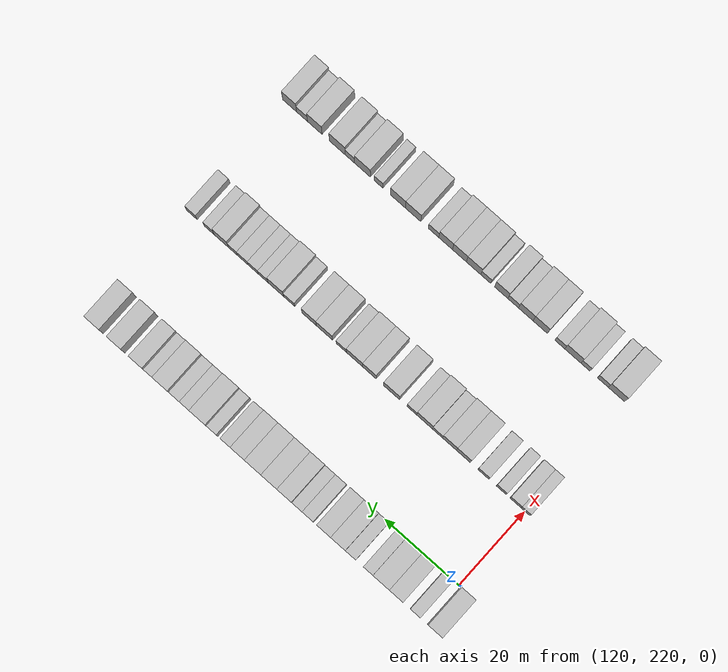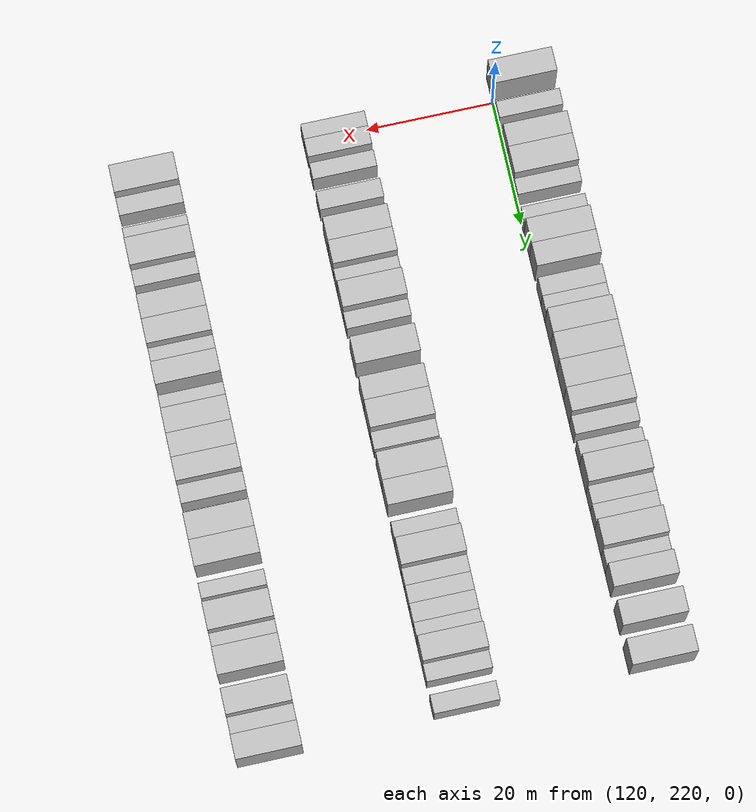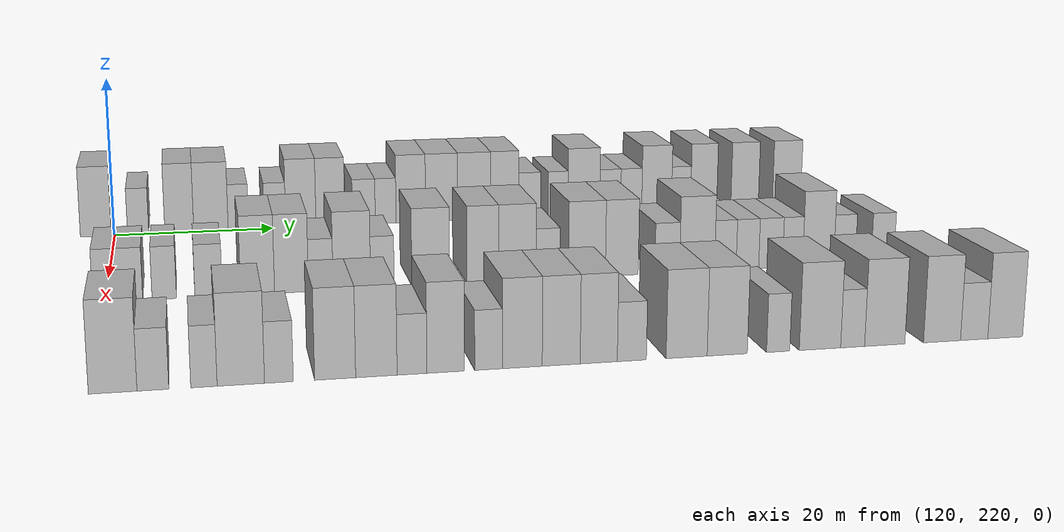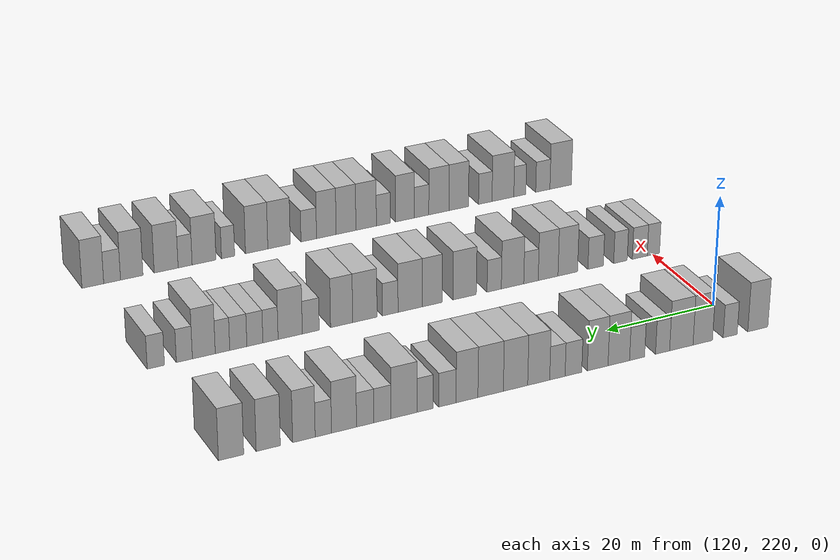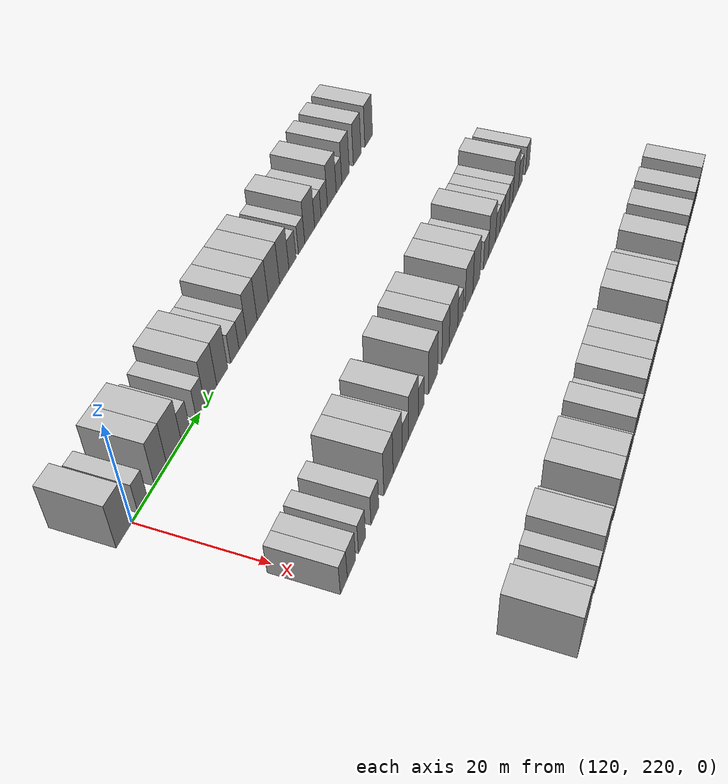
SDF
<sdf version="1.6">
 <world name="default">
  <model name="building_849">
   <static>1</static>
   <pose>115.0000 217.7060 0 0.000000 0.000000 0.000000</pose>
   <link name="link">
    <pose>0 0 4.50 0 0 0</pose>
    <collision name="collision"><geometry><box><size>10.0000 3.8228 9.0000</size></box></geometry></collision>
    <visual name="visual">
     <cast_shadows>0</cast_shadows>
     <geometry><box><size>10.0000 3.8228 9.0000</size></box></geometry>
     <material>
      <script>
       <uri>model://HANNAS_wall/materials/scripts</uri>
       <uri>model://HANNAS_wall/materials/textures</uri>
       <name>vrc/HANNAS_wall</name>
      </script>
     </material>
    </visual>
   </link>
  </model>
  <model name="building_850">
   <static>1</static>
   <pose>115.0000 222.9401 0 0.000000 0.000000 0.000000</pose>
   <link name="link">
    <pose>0 0 3.00 0 0 0</pose>
    <collision name="collision"><geometry><box><size>10.0000 2.6454 6.0000</size></box></geometry></collision>
    <visual name="visual">
     <cast_shadows>0</cast_shadows>
     <geometry><box><size>10.0000 2.6454 6.0000</size></box></geometry>
     <material>
      <script>
       <uri>model://HANNAS_wall/materials/scripts</uri>
       <uri>model://HANNAS_wall/materials/textures</uri>
       <name>vrc/HANNAS_wall</name>
      </script>
     </material>
    </visual>
   </link>
  </model>
  <model name="building_851">
   <static>1</static>
   <pose>115.0000 228.0801 0 0.000000 0.000000 0.000000</pose>
   <link name="link">
    <pose>0 0 4.50 0 0 0</pose>
    <collision name="collision"><geometry><box><size>10.0000 3.6346 9.0000</size></box></geometry></collision>
    <visual name="visual">
     <cast_shadows>0</cast_shadows>
     <geometry><box><size>10.0000 3.6346 9.0000</size></box></geometry>
     <material>
      <script>
       <uri>model://HANNAS_wall/materials/scripts</uri>
       <uri>model://HANNAS_wall/materials/textures</uri>
       <name>vrc/HANNAS_wall</name>
      </script>
     </material>
    </visual>
   </link>
  </model>
  <model name="building_852">
   <static>1</static>
   <pose>115.0000 232.0698 0 0.000000 0.000000 0.000000</pose>
   <link name="link">
    <pose>0 0 4.50 0 0 0</pose>
    <collision name="collision"><geometry><box><size>10.0000 4.3447 9.0000</size></box></geometry></collision>
    <visual name="visual">
     <cast_shadows>0</cast_shadows>
     <geometry><box><size>10.0000 4.3447 9.0000</size></box></geometry>
     <material>
      <script>
       <uri>model://HANNAS_wall/materials/scripts</uri>
       <uri>model://HANNAS_wall/materials/textures</uri>
       <name>vrc/HANNAS_wall</name>
      </script>
     </material>
    </visual>
   </link>
  </model>
  <model name="building_853">
   <static>1</static>
   <pose>115.0000 235.5335 0 0.000000 0.000000 0.000000</pose>
   <link name="link">
    <pose>0 0 3.00 0 0 0</pose>
    <collision name="collision"><geometry><box><size>10.0000 2.5827 6.0000</size></box></geometry></collision>
    <visual name="visual">
     <cast_shadows>0</cast_shadows>
     <geometry><box><size>10.0000 2.5827 6.0000</size></box></geometry>
     <material>
      <script>
       <uri>model://HANNAS_wall/materials/scripts</uri>
       <uri>model://HANNAS_wall/materials/textures</uri>
       <name>vrc/HANNAS_wall</name>
      </script>
     </material>
    </visual>
   </link>
  </model>
  <model name="building_854">
   <static>1</static>
   <pose>115.0000 240.2026 0 0.000000 0.000000 0.000000</pose>
   <link name="link">
    <pose>0 0 3.00 0 0 0</pose>
    <collision name="collision"><geometry><box><size>10.0000 2.7555 6.0000</size></box></geometry></collision>
    <visual name="visual">
     <cast_shadows>0</cast_shadows>
     <geometry><box><size>10.0000 2.7555 6.0000</size></box></geometry>
     <material>
      <script>
       <uri>model://HANNAS_wall/materials/scripts</uri>
       <uri>model://HANNAS_wall/materials/textures</uri>
       <name>vrc/HANNAS_wall</name>
      </script>
     </material>
    </visual>
   </link>
  </model>
  <model name="building_855">
   <static>1</static>
   <pose>115.0000 243.5331 0 0.000000 0.000000 0.000000</pose>
   <link name="link">
    <pose>0 0 4.50 0 0 0</pose>
    <collision name="collision"><geometry><box><size>10.0000 3.9055 9.0000</size></box></geometry></collision>
    <visual name="visual">
     <cast_shadows>0</cast_shadows>
     <geometry><box><size>10.0000 3.9055 9.0000</size></box></geometry>
     <material>
      <script>
       <uri>model://HANNAS_wall/materials/scripts</uri>
       <uri>model://HANNAS_wall/materials/textures</uri>
       <name>vrc/HANNAS_wall</name>
      </script>
     </material>
    </visual>
   </link>
  </model>
  <model name="building_856">
   <static>1</static>
   <pose>115.0000 247.3498 0 0.000000 0.000000 0.000000</pose>
   <link name="link">
    <pose>0 0 4.50 0 0 0</pose>
    <collision name="collision"><geometry><box><size>10.0000 3.7279 9.0000</size></box></geometry></collision>
    <visual name="visual">
     <cast_shadows>0</cast_shadows>
     <geometry><box><size>10.0000 3.7279 9.0000</size></box></geometry>
     <material>
      <script>
       <uri>model://HANNAS_wall/materials/scripts</uri>
       <uri>model://HANNAS_wall/materials/textures</uri>
       <name>vrc/HANNAS_wall</name>
      </script>
     </material>
    </visual>
   </link>
  </model>
  <model name="building_857">
   <static>1</static>
   <pose>115.0000 251.7013 0 0.000000 0.000000 0.000000</pose>
   <link name="link">
    <pose>0 0 3.00 0 0 0</pose>
    <collision name="collision"><geometry><box><size>10.0000 2.9753 6.0000</size></box></geometry></collision>
    <visual name="visual">
     <cast_shadows>0</cast_shadows>
     <geometry><box><size>10.0000 2.9753 6.0000</size></box></geometry>
     <material>
      <script>
       <uri>model://HANNAS_wall/materials/scripts</uri>
       <uri>model://HANNAS_wall/materials/textures</uri>
       <name>vrc/HANNAS_wall</name>
      </script>
     </material>
    </visual>
   </link>
  </model>
  <model name="building_858">
   <static>1</static>
   <pose>115.0000 254.5559 0 0.000000 0.000000 0.000000</pose>
   <link name="link">
    <pose>0 0 3.00 0 0 0</pose>
    <collision name="collision"><geometry><box><size>10.0000 2.7339 6.0000</size></box></geometry></collision>
    <visual name="visual">
     <cast_shadows>0</cast_shadows>
     <geometry><box><size>10.0000 2.7339 6.0000</size></box></geometry>
     <material>
      <script>
       <uri>model://HANNAS_wall/materials/scripts</uri>
       <uri>model://HANNAS_wall/materials/textures</uri>
       <name>vrc/HANNAS_wall</name>
      </script>
     </material>
    </visual>
   </link>
  </model>
  <model name="building_859">
   <static>1</static>
   <pose>115.0000 257.8661 0 0.000000 0.000000 0.000000</pose>
   <link name="link">
    <pose>0 0 4.50 0 0 0</pose>
    <collision name="collision"><geometry><box><size>10.0000 3.8864 9.0000</size></box></geometry></collision>
    <visual name="visual">
     <cast_shadows>0</cast_shadows>
     <geometry><box><size>10.0000 3.8864 9.0000</size></box></geometry>
     <material>
      <script>
       <uri>model://HANNAS_wall/materials/scripts</uri>
       <uri>model://HANNAS_wall/materials/textures</uri>
       <name>vrc/HANNAS_wall</name>
      </script>
     </material>
    </visual>
   </link>
  </model>
  <model name="building_860">
   <static>1</static>
   <pose>115.0000 261.9415 0 0.000000 0.000000 0.000000</pose>
   <link name="link">
    <pose>0 0 4.50 0 0 0</pose>
    <collision name="collision"><geometry><box><size>10.0000 4.2643 9.0000</size></box></geometry></collision>
    <visual name="visual">
     <cast_shadows>0</cast_shadows>
     <geometry><box><size>10.0000 4.2643 9.0000</size></box></geometry>
     <material>
      <script>
       <uri>model://HANNAS_wall/materials/scripts</uri>
       <uri>model://HANNAS_wall/materials/textures</uri>
       <name>vrc/HANNAS_wall</name>
      </script>
     </material>
    </visual>
   </link>
  </model>
  <model name="building_861">
   <static>1</static>
   <pose>115.0000 266.2828 0 0.000000 0.000000 0.000000</pose>
   <link name="link">
    <pose>0 0 4.50 0 0 0</pose>
    <collision name="collision"><geometry><box><size>10.0000 4.4184 9.0000</size></box></geometry></collision>
    <visual name="visual">
     <cast_shadows>0</cast_shadows>
     <geometry><box><size>10.0000 4.4184 9.0000</size></box></geometry>
     <material>
      <script>
       <uri>model://HANNAS_wall/materials/scripts</uri>
       <uri>model://HANNAS_wall/materials/textures</uri>
       <name>vrc/HANNAS_wall</name>
      </script>
     </material>
    </visual>
   </link>
  </model>
  <model name="building_862">
   <static>1</static>
   <pose>115.0000 270.3829 0 0.000000 0.000000 0.000000</pose>
   <link name="link">
    <pose>0 0 4.50 0 0 0</pose>
    <collision name="collision"><geometry><box><size>10.0000 3.7817 9.0000</size></box></geometry></collision>
    <visual name="visual">
     <cast_shadows>0</cast_shadows>
     <geometry><box><size>10.0000 3.7817 9.0000</size></box></geometry>
     <material>
      <script>
       <uri>model://HANNAS_wall/materials/scripts</uri>
       <uri>model://HANNAS_wall/materials/textures</uri>
       <name>vrc/HANNAS_wall</name>
      </script>
     </material>
    </visual>
   </link>
  </model>
  <model name="building_863">
   <static>1</static>
   <pose>115.0000 273.7485 0 0.000000 0.000000 0.000000</pose>
   <link name="link">
    <pose>0 0 3.00 0 0 0</pose>
    <collision name="collision"><geometry><box><size>10.0000 2.9495 6.0000</size></box></geometry></collision>
    <visual name="visual">
     <cast_shadows>0</cast_shadows>
     <geometry><box><size>10.0000 2.9495 6.0000</size></box></geometry>
     <material>
      <script>
       <uri>model://HANNAS_wall/materials/scripts</uri>
       <uri>model://HANNAS_wall/materials/textures</uri>
       <name>vrc/HANNAS_wall</name>
      </script>
     </material>
    </visual>
   </link>
  </model>
  <model name="building_864">
   <static>1</static>
   <pose>115.0000 277.5841 0 0.000000 0.000000 0.000000</pose>
   <link name="link">
    <pose>0 0 3.00 0 0 0</pose>
    <collision name="collision"><geometry><box><size>10.0000 2.7217 6.0000</size></box></geometry></collision>
    <visual name="visual">
     <cast_shadows>0</cast_shadows>
     <geometry><box><size>10.0000 2.7217 6.0000</size></box></geometry>
     <material>
      <script>
       <uri>model://HANNAS_wall/materials/scripts</uri>
       <uri>model://HANNAS_wall/materials/textures</uri>
       <name>vrc/HANNAS_wall</name>
      </script>
     </material>
    </visual>
   </link>
  </model>
  <model name="building_865">
   <static>1</static>
   <pose>115.0000 281.1212 0 0.000000 0.000000 0.000000</pose>
   <link name="link">
    <pose>0 0 4.50 0 0 0</pose>
    <collision name="collision"><geometry><box><size>10.0000 4.3524 9.0000</size></box></geometry></collision>
    <visual name="visual">
     <cast_shadows>0</cast_shadows>
     <geometry><box><size>10.0000 4.3524 9.0000</size></box></geometry>
     <material>
      <script>
       <uri>model://HANNAS_wall/materials/scripts</uri>
       <uri>model://HANNAS_wall/materials/textures</uri>
       <name>vrc/HANNAS_wall</name>
      </script>
     </material>
    </visual>
   </link>
  </model>
  <model name="building_866">
   <static>1</static>
   <pose>115.0000 284.7415 0 0.000000 0.000000 0.000000</pose>
   <link name="link">
    <pose>0 0 3.00 0 0 0</pose>
    <collision name="collision"><geometry><box><size>10.0000 2.8881 6.0000</size></box></geometry></collision>
    <visual name="visual">
     <cast_shadows>0</cast_shadows>
     <geometry><box><size>10.0000 2.8881 6.0000</size></box></geometry>
     <material>
      <script>
       <uri>model://HANNAS_wall/materials/scripts</uri>
       <uri>model://HANNAS_wall/materials/textures</uri>
       <name>vrc/HANNAS_wall</name>
      </script>
     </material>
    </visual>
   </link>
  </model>
  <model name="building_867">
   <static>1</static>
   <pose>115.0000 287.6376 0 0.000000 0.000000 0.000000</pose>
   <link name="link">
    <pose>0 0 3.00 0 0 0</pose>
    <collision name="collision"><geometry><box><size>10.0000 2.9042 6.0000</size></box></geometry></collision>
    <visual name="visual">
     <cast_shadows>0</cast_shadows>
     <geometry><box><size>10.0000 2.9042 6.0000</size></box></geometry>
     <material>
      <script>
       <uri>model://HANNAS_wall/materials/scripts</uri>
       <uri>model://HANNAS_wall/materials/textures</uri>
       <name>vrc/HANNAS_wall</name>
      </script>
     </material>
    </visual>
   </link>
  </model>
  <model name="building_868">
   <static>1</static>
   <pose>115.0000 291.1579 0 0.000000 0.000000 0.000000</pose>
   <link name="link">
    <pose>0 0 4.50 0 0 0</pose>
    <collision name="collision"><geometry><box><size>10.0000 4.1363 9.0000</size></box></geometry></collision>
    <visual name="visual">
     <cast_shadows>0</cast_shadows>
     <geometry><box><size>10.0000 4.1363 9.0000</size></box></geometry>
     <material>
      <script>
       <uri>model://HANNAS_wall/materials/scripts</uri>
       <uri>model://HANNAS_wall/materials/textures</uri>
       <name>vrc/HANNAS_wall</name>
      </script>
     </material>
    </visual>
   </link>
  </model>
  <model name="building_869">
   <static>1</static>
   <pose>115.0000 294.5676 0 0.000000 0.000000 0.000000</pose>
   <link name="link">
    <pose>0 0 3.00 0 0 0</pose>
    <collision name="collision"><geometry><box><size>10.0000 2.6831 6.0000</size></box></geometry></collision>
    <visual name="visual">
     <cast_shadows>0</cast_shadows>
     <geometry><box><size>10.0000 2.6831 6.0000</size></box></geometry>
     <material>
      <script>
       <uri>model://HANNAS_wall/materials/scripts</uri>
       <uri>model://HANNAS_wall/materials/textures</uri>
       <name>vrc/HANNAS_wall</name>
      </script>
     </material>
    </visual>
   </link>
  </model>
  <model name="building_870">
   <static>1</static>
   <pose>115.0000 297.7502 0 0.000000 0.000000 0.000000</pose>
   <link name="link">
    <pose>0 0 4.50 0 0 0</pose>
    <collision name="collision"><geometry><box><size>10.0000 3.6821 9.0000</size></box></geometry></collision>
    <visual name="visual">
     <cast_shadows>0</cast_shadows>
     <geometry><box><size>10.0000 3.6821 9.0000</size></box></geometry>
     <material>
      <script>
       <uri>model://HANNAS_wall/materials/scripts</uri>
       <uri>model://HANNAS_wall/materials/textures</uri>
       <name>vrc/HANNAS_wall</name>
      </script>
     </material>
    </visual>
   </link>
  </model>
  <model name="building_871">
   <static>1</static>
   <pose>115.0000 303.5435 0 0.000000 0.000000 0.000000</pose>
   <link name="link">
    <pose>0 0 4.50 0 0 0</pose>
    <collision name="collision"><geometry><box><size>10.0000 3.9046 9.0000</size></box></geometry></collision>
    <visual name="visual">
     <cast_shadows>0</cast_shadows>
     <geometry><box><size>10.0000 3.9046 9.0000</size></box></geometry>
     <material>
      <script>
       <uri>model://HANNAS_wall/materials/scripts</uri>
       <uri>model://HANNAS_wall/materials/textures</uri>
       <name>vrc/HANNAS_wall</name>
      </script>
     </material>
    </visual>
   </link>
  </model>
  <model name="building_872">
   <static>1</static>
   <pose>115.0000 309.5176 0 0.000000 0.000000 0.000000</pose>
   <link name="link">
    <pose>0 0 4.50 0 0 0</pose>
    <collision name="collision"><geometry><box><size>10.0000 4.0435 9.0000</size></box></geometry></collision>
    <visual name="visual">
     <cast_shadows>0</cast_shadows>
     <geometry><box><size>10.0000 4.0435 9.0000</size></box></geometry>
     <material>
      <script>
       <uri>model://HANNAS_wall/materials/scripts</uri>
       <uri>model://HANNAS_wall/materials/textures</uri>
       <name>vrc/HANNAS_wall</name>
      </script>
     </material>
    </visual>
   </link>
  </model>
  <model name="building_1076">
   <static>1</static>
   <pose>145.0000 219.8713 0 0.000000 0.000000 0.000000</pose>
   <link name="link">
    <pose>0 0 3.00 0 0 0</pose>
    <collision name="collision"><geometry><box><size>10.0000 2.4144 6.0000</size></box></geometry></collision>
    <visual name="visual">
     <cast_shadows>0</cast_shadows>
     <geometry><box><size>10.0000 2.4144 6.0000</size></box></geometry>
     <material>
      <script>
       <uri>model://HANNAS_wall/materials/scripts</uri>
       <uri>model://HANNAS_wall/materials/textures</uri>
       <name>vrc/HANNAS_wall</name>
      </script>
     </material>
    </visual>
   </link>
  </model>
  <model name="building_1077">
   <static>1</static>
   <pose>145.0000 222.5494 0 0.000000 0.000000 0.000000</pose>
   <link name="link">
    <pose>0 0 3.00 0 0 0</pose>
    <collision name="collision"><geometry><box><size>10.0000 2.9419 6.0000</size></box></geometry></collision>
    <visual name="visual">
     <cast_shadows>0</cast_shadows>
     <geometry><box><size>10.0000 2.9419 6.0000</size></box></geometry>
     <material>
      <script>
       <uri>model://HANNAS_wall/materials/scripts</uri>
       <uri>model://HANNAS_wall/materials/textures</uri>
       <name>vrc/HANNAS_wall</name>
      </script>
     </material>
    </visual>
   </link>
  </model>
  <model name="building_1078">
   <static>1</static>
   <pose>145.0000 226.3404 0 0.000000 0.000000 0.000000</pose>
   <link name="link">
    <pose>0 0 3.00 0 0 0</pose>
    <collision name="collision"><geometry><box><size>10.0000 2.6401 6.0000</size></box></geometry></collision>
    <visual name="visual">
     <cast_shadows>0</cast_shadows>
     <geometry><box><size>10.0000 2.6401 6.0000</size></box></geometry>
     <material>
      <script>
       <uri>model://HANNAS_wall/materials/scripts</uri>
       <uri>model://HANNAS_wall/materials/textures</uri>
       <name>vrc/HANNAS_wall</name>
      </script>
     </material>
    </visual>
   </link>
  </model>
  <model name="building_1079">
   <static>1</static>
   <pose>145.0000 231.1580 0 0.000000 0.000000 0.000000</pose>
   <link name="link">
    <pose>0 0 3.00 0 0 0</pose>
    <collision name="collision"><geometry><box><size>10.0000 2.9951 6.0000</size></box></geometry></collision>
    <visual name="visual">
     <cast_shadows>0</cast_shadows>
     <geometry><box><size>10.0000 2.9951 6.0000</size></box></geometry>
     <material>
      <script>
       <uri>model://HANNAS_wall/materials/scripts</uri>
       <uri>model://HANNAS_wall/materials/textures</uri>
       <name>vrc/HANNAS_wall</name>
      </script>
     </material>
    </visual>
   </link>
  </model>
  <model name="building_1080">
   <static>1</static>
   <pose>145.0000 236.5283 0 0.000000 0.000000 0.000000</pose>
   <link name="link">
    <pose>0 0 4.50 0 0 0</pose>
    <collision name="collision"><geometry><box><size>10.0000 3.7454 9.0000</size></box></geometry></collision>
    <visual name="visual">
     <cast_shadows>0</cast_shadows>
     <geometry><box><size>10.0000 3.7454 9.0000</size></box></geometry>
     <material>
      <script>
       <uri>model://HANNAS_wall/materials/scripts</uri>
       <uri>model://HANNAS_wall/materials/textures</uri>
       <name>vrc/HANNAS_wall</name>
      </script>
     </material>
    </visual>
   </link>
  </model>
  <model name="building_1081">
   <static>1</static>
   <pose>145.0000 240.2845 0 0.000000 0.000000 0.000000</pose>
   <link name="link">
    <pose>0 0 4.50 0 0 0</pose>
    <collision name="collision"><geometry><box><size>10.0000 3.7670 9.0000</size></box></geometry></collision>
    <visual name="visual">
     <cast_shadows>0</cast_shadows>
     <geometry><box><size>10.0000 3.7670 9.0000</size></box></geometry>
     <material>
      <script>
       <uri>model://HANNAS_wall/materials/scripts</uri>
       <uri>model://HANNAS_wall/materials/textures</uri>
       <name>vrc/HANNAS_wall</name>
      </script>
     </material>
    </visual>
   </link>
  </model>
  <model name="building_1082">
   <static>1</static>
   <pose>145.0000 243.5395 0 0.000000 0.000000 0.000000</pose>
   <link name="link">
    <pose>0 0 3.00 0 0 0</pose>
    <collision name="collision"><geometry><box><size>10.0000 2.7430 6.0000</size></box></geometry></collision>
    <visual name="visual">
     <cast_shadows>0</cast_shadows>
     <geometry><box><size>10.0000 2.7430 6.0000</size></box></geometry>
     <material>
      <script>
       <uri>model://HANNAS_wall/materials/scripts</uri>
       <uri>model://HANNAS_wall/materials/textures</uri>
       <name>vrc/HANNAS_wall</name>
      </script>
     </material>
    </visual>
   </link>
  </model>
  <model name="building_1083">
   <static>1</static>
   <pose>145.0000 247.0206 0 0.000000 0.000000 0.000000</pose>
   <link name="link">
    <pose>0 0 4.50 0 0 0</pose>
    <collision name="collision"><geometry><box><size>10.0000 4.2194 9.0000</size></box></geometry></collision>
    <visual name="visual">
     <cast_shadows>0</cast_shadows>
     <geometry><box><size>10.0000 4.2194 9.0000</size></box></geometry>
     <material>
      <script>
       <uri>model://HANNAS_wall/materials/scripts</uri>
       <uri>model://HANNAS_wall/materials/textures</uri>
       <name>vrc/HANNAS_wall</name>
      </script>
     </material>
    </visual>
   </link>
  </model>
  <model name="building_1084">
   <static>1</static>
   <pose>145.0000 250.4663 0 0.000000 0.000000 0.000000</pose>
   <link name="link">
    <pose>0 0 3.00 0 0 0</pose>
    <collision name="collision"><geometry><box><size>10.0000 2.6719 6.0000</size></box></geometry></collision>
    <visual name="visual">
     <cast_shadows>0</cast_shadows>
     <geometry><box><size>10.0000 2.6719 6.0000</size></box></geometry>
     <material>
      <script>
       <uri>model://HANNAS_wall/materials/scripts</uri>
       <uri>model://HANNAS_wall/materials/textures</uri>
       <name>vrc/HANNAS_wall</name>
      </script>
     </material>
    </visual>
   </link>
  </model>
  <model name="building_1085">
   <static>1</static>
   <pose>145.0000 255.9695 0 0.000000 0.000000 0.000000</pose>
   <link name="link">
    <pose>0 0 4.50 0 0 0</pose>
    <collision name="collision"><geometry><box><size>10.0000 4.3346 9.0000</size></box></geometry></collision>
    <visual name="visual">
     <cast_shadows>0</cast_shadows>
     <geometry><box><size>10.0000 4.3346 9.0000</size></box></geometry>
     <material>
      <script>
       <uri>model://HANNAS_wall/materials/scripts</uri>
       <uri>model://HANNAS_wall/materials/textures</uri>
       <name>vrc/HANNAS_wall</name>
      </script>
     </material>
    </visual>
   </link>
  </model>
  <model name="building_1086">
   <static>1</static>
   <pose>145.0000 261.9643 0 0.000000 0.000000 0.000000</pose>
   <link name="link">
    <pose>0 0 4.50 0 0 0</pose>
    <collision name="collision"><geometry><box><size>10.0000 3.6550 9.0000</size></box></geometry></collision>
    <visual name="visual">
     <cast_shadows>0</cast_shadows>
     <geometry><box><size>10.0000 3.6550 9.0000</size></box></geometry>
     <material>
      <script>
       <uri>model://HANNAS_wall/materials/scripts</uri>
       <uri>model://HANNAS_wall/materials/textures</uri>
       <name>vrc/HANNAS_wall</name>
      </script>
     </material>
    </visual>
   </link>
  </model>
  <model name="building_1087">
   <static>1</static>
   <pose>145.0000 265.9837 0 0.000000 0.000000 0.000000</pose>
   <link name="link">
    <pose>0 0 4.50 0 0 0</pose>
    <collision name="collision"><geometry><box><size>10.0000 4.3838 9.0000</size></box></geometry></collision>
    <visual name="visual">
     <cast_shadows>0</cast_shadows>
     <geometry><box><size>10.0000 4.3838 9.0000</size></box></geometry>
     <material>
      <script>
       <uri>model://HANNAS_wall/materials/scripts</uri>
       <uri>model://HANNAS_wall/materials/textures</uri>
       <name>vrc/HANNAS_wall</name>
      </script>
     </material>
    </visual>
   </link>
  </model>
  <model name="building_1088">
   <static>1</static>
   <pose>145.0000 269.5770 0 0.000000 0.000000 0.000000</pose>
   <link name="link">
    <pose>0 0 3.00 0 0 0</pose>
    <collision name="collision"><geometry><box><size>10.0000 2.8028 6.0000</size></box></geometry></collision>
    <visual name="visual">
     <cast_shadows>0</cast_shadows>
     <geometry><box><size>10.0000 2.8028 6.0000</size></box></geometry>
     <material>
      <script>
       <uri>model://HANNAS_wall/materials/scripts</uri>
       <uri>model://HANNAS_wall/materials/textures</uri>
       <name>vrc/HANNAS_wall</name>
      </script>
     </material>
    </visual>
   </link>
  </model>
  <model name="building_1089">
   <static>1</static>
   <pose>145.0000 274.1608 0 0.000000 0.000000 0.000000</pose>
   <link name="link">
    <pose>0 0 4.50 0 0 0</pose>
    <collision name="collision"><geometry><box><size>10.0000 4.3649 9.0000</size></box></geometry></collision>
    <visual name="visual">
     <cast_shadows>0</cast_shadows>
     <geometry><box><size>10.0000 4.3649 9.0000</size></box></geometry>
     <material>
      <script>
       <uri>model://HANNAS_wall/materials/scripts</uri>
       <uri>model://HANNAS_wall/materials/textures</uri>
       <name>vrc/HANNAS_wall</name>
      </script>
     </material>
    </visual>
   </link>
  </model>
  <model name="building_1090">
   <static>1</static>
   <pose>145.0000 278.3049 0 0.000000 0.000000 0.000000</pose>
   <link name="link">
    <pose>0 0 4.50 0 0 0</pose>
    <collision name="collision"><geometry><box><size>10.0000 3.9231 9.0000</size></box></geometry></collision>
    <visual name="visual">
     <cast_shadows>0</cast_shadows>
     <geometry><box><size>10.0000 3.9231 9.0000</size></box></geometry>
     <material>
      <script>
       <uri>model://HANNAS_wall/materials/scripts</uri>
       <uri>model://HANNAS_wall/materials/textures</uri>
       <name>vrc/HANNAS_wall</name>
      </script>
     </material>
    </visual>
   </link>
  </model>
  <model name="building_1091">
   <static>1</static>
   <pose>145.0000 283.7570 0 0.000000 0.000000 0.000000</pose>
   <link name="link">
    <pose>0 0 3.00 0 0 0</pose>
    <collision name="collision"><geometry><box><size>10.0000 2.9811 6.0000</size></box></geometry></collision>
    <visual name="visual">
     <cast_shadows>0</cast_shadows>
     <geometry><box><size>10.0000 2.9811 6.0000</size></box></geometry>
     <material>
      <script>
       <uri>model://HANNAS_wall/materials/scripts</uri>
       <uri>model://HANNAS_wall/materials/textures</uri>
       <name>vrc/HANNAS_wall</name>
      </script>
     </material>
    </visual>
   </link>
  </model>
  <model name="building_1092">
   <static>1</static>
   <pose>145.0000 287.3699 0 0.000000 0.000000 0.000000</pose>
   <link name="link">
    <pose>0 0 4.50 0 0 0</pose>
    <collision name="collision"><geometry><box><size>10.0000 4.2446 9.0000</size></box></geometry></collision>
    <visual name="visual">
     <cast_shadows>0</cast_shadows>
     <geometry><box><size>10.0000 4.2446 9.0000</size></box></geometry>
     <material>
      <script>
       <uri>model://HANNAS_wall/materials/scripts</uri>
       <uri>model://HANNAS_wall/materials/textures</uri>
       <name>vrc/HANNAS_wall</name>
      </script>
     </material>
    </visual>
   </link>
  </model>
  <model name="building_1093">
   <static>1</static>
   <pose>145.0000 290.8124 0 0.000000 0.000000 0.000000</pose>
   <link name="link">
    <pose>0 0 3.00 0 0 0</pose>
    <collision name="collision"><geometry><box><size>10.0000 2.6406 6.0000</size></box></geometry></collision>
    <visual name="visual">
     <cast_shadows>0</cast_shadows>
     <geometry><box><size>10.0000 2.6406 6.0000</size></box></geometry>
     <material>
      <script>
       <uri>model://HANNAS_wall/materials/scripts</uri>
       <uri>model://HANNAS_wall/materials/textures</uri>
       <name>vrc/HANNAS_wall</name>
      </script>
     </material>
    </visual>
   </link>
  </model>
  <model name="building_1094">
   <static>1</static>
   <pose>145.0000 293.5185 0 0.000000 0.000000 0.000000</pose>
   <link name="link">
    <pose>0 0 3.00 0 0 0</pose>
    <collision name="collision"><geometry><box><size>10.0000 2.7715 6.0000</size></box></geometry></collision>
    <visual name="visual">
     <cast_shadows>0</cast_shadows>
     <geometry><box><size>10.0000 2.7715 6.0000</size></box></geometry>
     <material>
      <script>
       <uri>model://HANNAS_wall/materials/scripts</uri>
       <uri>model://HANNAS_wall/materials/textures</uri>
       <name>vrc/HANNAS_wall</name>
      </script>
     </material>
    </visual>
   </link>
  </model>
  <model name="building_1095">
   <static>1</static>
   <pose>145.0000 296.3792 0 0.000000 0.000000 0.000000</pose>
   <link name="link">
    <pose>0 0 3.00 0 0 0</pose>
    <collision name="collision"><geometry><box><size>10.0000 2.9499 6.0000</size></box></geometry></collision>
    <visual name="visual">
     <cast_shadows>0</cast_shadows>
     <geometry><box><size>10.0000 2.9499 6.0000</size></box></geometry>
     <material>
      <script>
       <uri>model://HANNAS_wall/materials/scripts</uri>
       <uri>model://HANNAS_wall/materials/textures</uri>
       <name>vrc/HANNAS_wall</name>
      </script>
     </material>
    </visual>
   </link>
  </model>
  <model name="building_1096">
   <static>1</static>
   <pose>145.0000 299.0949 0 0.000000 0.000000 0.000000</pose>
   <link name="link">
    <pose>0 0 3.00 0 0 0</pose>
    <collision name="collision"><geometry><box><size>10.0000 2.4816 6.0000</size></box></geometry></collision>
    <visual name="visual">
     <cast_shadows>0</cast_shadows>
     <geometry><box><size>10.0000 2.4816 6.0000</size></box></geometry>
     <material>
      <script>
       <uri>model://HANNAS_wall/materials/scripts</uri>
       <uri>model://HANNAS_wall/materials/textures</uri>
       <name>vrc/HANNAS_wall</name>
      </script>
     </material>
    </visual>
   </link>
  </model>
  <model name="building_1097">
   <static>1</static>
   <pose>145.0000 302.2819 0 0.000000 0.000000 0.000000</pose>
   <link name="link">
    <pose>0 0 4.50 0 0 0</pose>
    <collision name="collision"><geometry><box><size>10.0000 3.8923 9.0000</size></box></geometry></collision>
    <visual name="visual">
     <cast_shadows>0</cast_shadows>
     <geometry><box><size>10.0000 3.8923 9.0000</size></box></geometry>
     <material>
      <script>
       <uri>model://HANNAS_wall/materials/scripts</uri>
       <uri>model://HANNAS_wall/materials/textures</uri>
       <name>vrc/HANNAS_wall</name>
      </script>
     </material>
    </visual>
   </link>
  </model>
  <model name="building_1098">
   <static>1</static>
   <pose>145.0000 305.5863 0 0.000000 0.000000 0.000000</pose>
   <link name="link">
    <pose>0 0 3.00 0 0 0</pose>
    <collision name="collision"><geometry><box><size>10.0000 2.7165 6.0000</size></box></geometry></collision>
    <visual name="visual">
     <cast_shadows>0</cast_shadows>
     <geometry><box><size>10.0000 2.7165 6.0000</size></box></geometry>
     <material>
      <script>
       <uri>model://HANNAS_wall/materials/scripts</uri>
       <uri>model://HANNAS_wall/materials/textures</uri>
       <name>vrc/HANNAS_wall</name>
      </script>
     </material>
    </visual>
   </link>
  </model>
  <model name="building_1099">
   <static>1</static>
   <pose>145.0000 310.3919 0 0.000000 0.000000 0.000000</pose>
   <link name="link">
    <pose>0 0 3.00 0 0 0</pose>
    <collision name="collision"><geometry><box><size>10.0000 2.8947 6.0000</size></box></geometry></collision>
    <visual name="visual">
     <cast_shadows>0</cast_shadows>
     <geometry><box><size>10.0000 2.8947 6.0000</size></box></geometry>
     <material>
      <script>
       <uri>model://HANNAS_wall/materials/scripts</uri>
       <uri>model://HANNAS_wall/materials/textures</uri>
       <name>vrc/HANNAS_wall</name>
      </script>
     </material>
    </visual>
   </link>
  </model>
  <model name="building_1303">
   <static>1</static>
   <pose>175.0000 221.8098 0 0.000000 0.000000 0.000000</pose>
   <link name="link">
    <pose>0 0 4.50 0 0 0</pose>
    <collision name="collision"><geometry><box><size>10.0000 4.3854 9.0000</size></box></geometry></collision>
    <visual name="visual">
     <cast_shadows>0</cast_shadows>
     <geometry><box><size>10.0000 4.3854 9.0000</size></box></geometry>
     <material>
      <script>
       <uri>model://HANNAS_wall/materials/scripts</uri>
       <uri>model://HANNAS_wall/materials/textures</uri>
       <name>vrc/HANNAS_wall</name>
      </script>
     </material>
    </visual>
   </link>
  </model>
  <model name="building_1304">
   <static>1</static>
   <pose>175.0000 225.4496 0 0.000000 0.000000 0.000000</pose>
   <link name="link">
    <pose>0 0 3.00 0 0 0</pose>
    <collision name="collision"><geometry><box><size>10.0000 2.8942 6.0000</size></box></geometry></collision>
    <visual name="visual">
     <cast_shadows>0</cast_shadows>
     <geometry><box><size>10.0000 2.8942 6.0000</size></box></geometry>
     <material>
      <script>
       <uri>model://HANNAS_wall/materials/scripts</uri>
       <uri>model://HANNAS_wall/materials/textures</uri>
       <name>vrc/HANNAS_wall</name>
      </script>
     </material>
    </visual>
   </link>
  </model>
  <model name="building_1305">
   <static>1</static>
   <pose>175.0000 230.1076 0 0.000000 0.000000 0.000000</pose>
   <link name="link">
    <pose>0 0 3.00 0 0 0</pose>
    <collision name="collision"><geometry><box><size>10.0000 2.4218 6.0000</size></box></geometry></collision>
    <visual name="visual">
     <cast_shadows>0</cast_shadows>
     <geometry><box><size>10.0000 2.4218 6.0000</size></box></geometry>
     <material>
      <script>
       <uri>model://HANNAS_wall/materials/scripts</uri>
       <uri>model://HANNAS_wall/materials/textures</uri>
       <name>vrc/HANNAS_wall</name>
      </script>
     </material>
    </visual>
   </link>
  </model>
  <model name="building_1306">
   <static>1</static>
   <pose>175.0000 233.5124 0 0.000000 0.000000 0.000000</pose>
   <link name="link">
    <pose>0 0 4.50 0 0 0</pose>
    <collision name="collision"><geometry><box><size>10.0000 4.3878 9.0000</size></box></geometry></collision>
    <visual name="visual">
     <cast_shadows>0</cast_shadows>
     <geometry><box><size>10.0000 4.3878 9.0000</size></box></geometry>
     <material>
      <script>
       <uri>model://HANNAS_wall/materials/scripts</uri>
       <uri>model://HANNAS_wall/materials/textures</uri>
       <name>vrc/HANNAS_wall</name>
      </script>
     </material>
    </visual>
   </link>
  </model>
  <model name="building_1307">
   <static>1</static>
   <pose>175.0000 237.0475 0 0.000000 0.000000 0.000000</pose>
   <link name="link">
    <pose>0 0 3.00 0 0 0</pose>
    <collision name="collision"><geometry><box><size>10.0000 2.6824 6.0000</size></box></geometry></collision>
    <visual name="visual">
     <cast_shadows>0</cast_shadows>
     <geometry><box><size>10.0000 2.6824 6.0000</size></box></geometry>
     <material>
      <script>
       <uri>model://HANNAS_wall/materials/scripts</uri>
       <uri>model://HANNAS_wall/materials/textures</uri>
       <name>vrc/HANNAS_wall</name>
      </script>
     </material>
    </visual>
   </link>
  </model>
  <model name="building_1308">
   <static>1</static>
   <pose>175.0000 242.3245 0 0.000000 0.000000 0.000000</pose>
   <link name="link">
    <pose>0 0 4.50 0 0 0</pose>
    <collision name="collision"><geometry><box><size>10.0000 3.8717 9.0000</size></box></geometry></collision>
    <visual name="visual">
     <cast_shadows>0</cast_shadows>
     <geometry><box><size>10.0000 3.8717 9.0000</size></box></geometry>
     <material>
      <script>
       <uri>model://HANNAS_wall/materials/scripts</uri>
       <uri>model://HANNAS_wall/materials/textures</uri>
       <name>vrc/HANNAS_wall</name>
      </script>
     </material>
    </visual>
   </link>
  </model>
  <model name="building_1309">
   <static>1</static>
   <pose>175.0000 246.2372 0 0.000000 0.000000 0.000000</pose>
   <link name="link">
    <pose>0 0 4.50 0 0 0</pose>
    <collision name="collision"><geometry><box><size>10.0000 3.9536 9.0000</size></box></geometry></collision>
    <visual name="visual">
     <cast_shadows>0</cast_shadows>
     <geometry><box><size>10.0000 3.9536 9.0000</size></box></geometry>
     <material>
      <script>
       <uri>model://HANNAS_wall/materials/scripts</uri>
       <uri>model://HANNAS_wall/materials/textures</uri>
       <name>vrc/HANNAS_wall</name>
      </script>
     </material>
    </visual>
   </link>
  </model>
  <model name="building_1310">
   <static>1</static>
   <pose>175.0000 249.6439 0 0.000000 0.000000 0.000000</pose>
   <link name="link">
    <pose>0 0 3.00 0 0 0</pose>
    <collision name="collision"><geometry><box><size>10.0000 2.8599 6.0000</size></box></geometry></collision>
    <visual name="visual">
     <cast_shadows>0</cast_shadows>
     <geometry><box><size>10.0000 2.8599 6.0000</size></box></geometry>
     <material>
      <script>
       <uri>model://HANNAS_wall/materials/scripts</uri>
       <uri>model://HANNAS_wall/materials/textures</uri>
       <name>vrc/HANNAS_wall</name>
      </script>
     </material>
    </visual>
   </link>
  </model>
  <model name="building_1311">
   <static>1</static>
   <pose>175.0000 252.8883 0 0.000000 0.000000 0.000000</pose>
   <link name="link">
    <pose>0 0 4.50 0 0 0</pose>
    <collision name="collision"><geometry><box><size>10.0000 3.6289 9.0000</size></box></geometry></collision>
    <visual name="visual">
     <cast_shadows>0</cast_shadows>
     <geometry><box><size>10.0000 3.6289 9.0000</size></box></geometry>
     <material>
      <script>
       <uri>model://HANNAS_wall/materials/scripts</uri>
       <uri>model://HANNAS_wall/materials/textures</uri>
       <name>vrc/HANNAS_wall</name>
      </script>
     </material>
    </visual>
   </link>
  </model>
  <model name="building_1312">
   <static>1</static>
   <pose>175.0000 257.0507 0 0.000000 0.000000 0.000000</pose>
   <link name="link">
    <pose>0 0 3.00 0 0 0</pose>
    <collision name="collision"><geometry><box><size>10.0000 2.6960 6.0000</size></box></geometry></collision>
    <visual name="visual">
     <cast_shadows>0</cast_shadows>
     <geometry><box><size>10.0000 2.6960 6.0000</size></box></geometry>
     <material>
      <script>
       <uri>model://HANNAS_wall/materials/scripts</uri>
       <uri>model://HANNAS_wall/materials/textures</uri>
       <name>vrc/HANNAS_wall</name>
      </script>
     </material>
    </visual>
   </link>
  </model>
  <model name="building_1313">
   <static>1</static>
   <pose>175.0000 260.3637 0 0.000000 0.000000 0.000000</pose>
   <link name="link">
    <pose>0 0 4.50 0 0 0</pose>
    <collision name="collision"><geometry><box><size>10.0000 3.9300 9.0000</size></box></geometry></collision>
    <visual name="visual">
     <cast_shadows>0</cast_shadows>
     <geometry><box><size>10.0000 3.9300 9.0000</size></box></geometry>
     <material>
      <script>
       <uri>model://HANNAS_wall/materials/scripts</uri>
       <uri>model://HANNAS_wall/materials/textures</uri>
       <name>vrc/HANNAS_wall</name>
      </script>
     </material>
    </visual>
   </link>
  </model>
  <model name="building_1314">
   <static>1</static>
   <pose>175.0000 264.2126 0 0.000000 0.000000 0.000000</pose>
   <link name="link">
    <pose>0 0 4.50 0 0 0</pose>
    <collision name="collision"><geometry><box><size>10.0000 3.7679 9.0000</size></box></geometry></collision>
    <visual name="visual">
     <cast_shadows>0</cast_shadows>
     <geometry><box><size>10.0000 3.7679 9.0000</size></box></geometry>
     <material>
      <script>
       <uri>model://HANNAS_wall/materials/scripts</uri>
       <uri>model://HANNAS_wall/materials/textures</uri>
       <name>vrc/HANNAS_wall</name>
      </script>
     </material>
    </visual>
   </link>
  </model>
  <model name="building_1315">
   <static>1</static>
   <pose>175.0000 267.9534 0 0.000000 0.000000 0.000000</pose>
   <link name="link">
    <pose>0 0 4.50 0 0 0</pose>
    <collision name="collision"><geometry><box><size>10.0000 3.7137 9.0000</size></box></geometry></collision>
    <visual name="visual">
     <cast_shadows>0</cast_shadows>
     <geometry><box><size>10.0000 3.7137 9.0000</size></box></geometry>
     <material>
      <script>
       <uri>model://HANNAS_wall/materials/scripts</uri>
       <uri>model://HANNAS_wall/materials/textures</uri>
       <name>vrc/HANNAS_wall</name>
      </script>
     </material>
    </visual>
   </link>
  </model>
  <model name="building_1316">
   <static>1</static>
   <pose>175.0000 271.2754 0 0.000000 0.000000 0.000000</pose>
   <link name="link">
    <pose>0 0 3.00 0 0 0</pose>
    <collision name="collision"><geometry><box><size>10.0000 2.9302 6.0000</size></box></geometry></collision>
    <visual name="visual">
     <cast_shadows>0</cast_shadows>
     <geometry><box><size>10.0000 2.9302 6.0000</size></box></geometry>
     <material>
      <script>
       <uri>model://HANNAS_wall/materials/scripts</uri>
       <uri>model://HANNAS_wall/materials/textures</uri>
       <name>vrc/HANNAS_wall</name>
      </script>
     </material>
    </visual>
   </link>
  </model>
  <model name="building_1317">
   <static>1</static>
   <pose>175.0000 276.8375 0 0.000000 0.000000 0.000000</pose>
   <link name="link">
    <pose>0 0 4.50 0 0 0</pose>
    <collision name="collision"><geometry><box><size>10.0000 4.1941 9.0000</size></box></geometry></collision>
    <visual name="visual">
     <cast_shadows>0</cast_shadows>
     <geometry><box><size>10.0000 4.1941 9.0000</size></box></geometry>
     <material>
      <script>
       <uri>model://HANNAS_wall/materials/scripts</uri>
       <uri>model://HANNAS_wall/materials/textures</uri>
       <name>vrc/HANNAS_wall</name>
      </script>
     </material>
    </visual>
   </link>
  </model>
  <model name="building_1318">
   <static>1</static>
   <pose>175.0000 281.0029 0 0.000000 0.000000 0.000000</pose>
   <link name="link">
    <pose>0 0 4.50 0 0 0</pose>
    <collision name="collision"><geometry><box><size>10.0000 4.1367 9.0000</size></box></geometry></collision>
    <visual name="visual">
     <cast_shadows>0</cast_shadows>
     <geometry><box><size>10.0000 4.1367 9.0000</size></box></geometry>
     <material>
      <script>
       <uri>model://HANNAS_wall/materials/scripts</uri>
       <uri>model://HANNAS_wall/materials/textures</uri>
       <name>vrc/HANNAS_wall</name>
      </script>
     </material>
    </visual>
   </link>
  </model>
  <model name="building_1319">
   <static>1</static>
   <pose>175.0000 286.2804 0 0.000000 0.000000 0.000000</pose>
   <link name="link">
    <pose>0 0 3.00 0 0 0</pose>
    <collision name="collision"><geometry><box><size>10.0000 2.4183 6.0000</size></box></geometry></collision>
    <visual name="visual">
     <cast_shadows>0</cast_shadows>
     <geometry><box><size>10.0000 2.4183 6.0000</size></box></geometry>
     <material>
      <script>
       <uri>model://HANNAS_wall/materials/scripts</uri>
       <uri>model://HANNAS_wall/materials/textures</uri>
       <name>vrc/HANNAS_wall</name>
      </script>
     </material>
    </visual>
   </link>
  </model>
  <model name="building_1320">
   <static>1</static>
   <pose>175.0000 290.6660 0 0.000000 0.000000 0.000000</pose>
   <link name="link">
    <pose>0 0 4.50 0 0 0</pose>
    <collision name="collision"><geometry><box><size>10.0000 4.3529 9.0000</size></box></geometry></collision>
    <visual name="visual">
     <cast_shadows>0</cast_shadows>
     <geometry><box><size>10.0000 4.3529 9.0000</size></box></geometry>
     <material>
      <script>
       <uri>model://HANNAS_wall/materials/scripts</uri>
       <uri>model://HANNAS_wall/materials/textures</uri>
       <name>vrc/HANNAS_wall</name>
      </script>
     </material>
    </visual>
   </link>
  </model>
  <model name="building_1321">
   <static>1</static>
   <pose>175.0000 294.1128 0 0.000000 0.000000 0.000000</pose>
   <link name="link">
    <pose>0 0 3.00 0 0 0</pose>
    <collision name="collision"><geometry><box><size>10.0000 2.5405 6.0000</size></box></geometry></collision>
    <visual name="visual">
     <cast_shadows>0</cast_shadows>
     <geometry><box><size>10.0000 2.5405 6.0000</size></box></geometry>
     <material>
      <script>
       <uri>model://HANNAS_wall/materials/scripts</uri>
       <uri>model://HANNAS_wall/materials/textures</uri>
       <name>vrc/HANNAS_wall</name>
      </script>
     </material>
    </visual>
   </link>
  </model>
  <model name="building_1322">
   <static>1</static>
   <pose>175.0000 297.5368 0 0.000000 0.000000 0.000000</pose>
   <link name="link">
    <pose>0 0 4.50 0 0 0</pose>
    <collision name="collision"><geometry><box><size>10.0000 4.3075 9.0000</size></box></geometry></collision>
    <visual name="visual">
     <cast_shadows>0</cast_shadows>
     <geometry><box><size>10.0000 4.3075 9.0000</size></box></geometry>
     <material>
      <script>
       <uri>model://HANNAS_wall/materials/scripts</uri>
       <uri>model://HANNAS_wall/materials/textures</uri>
       <name>vrc/HANNAS_wall</name>
      </script>
     </material>
    </visual>
   </link>
  </model>
  <model name="building_1323">
   <static>1</static>
   <pose>175.0000 303.6938 0 0.000000 0.000000 0.000000</pose>
   <link name="link">
    <pose>0 0 4.50 0 0 0</pose>
    <collision name="collision"><geometry><box><size>10.0000 4.0065 9.0000</size></box></geometry></collision>
    <visual name="visual">
     <cast_shadows>0</cast_shadows>
     <geometry><box><size>10.0000 4.0065 9.0000</size></box></geometry>
     <material>
      <script>
       <uri>model://HANNAS_wall/materials/scripts</uri>
       <uri>model://HANNAS_wall/materials/textures</uri>
       <name>vrc/HANNAS_wall</name>
      </script>
     </material>
    </visual>
   </link>
  </model>
  <model name="building_1324">
   <static>1</static>
   <pose>175.0000 307.1852 0 0.000000 0.000000 0.000000</pose>
   <link name="link">
    <pose>0 0 3.00 0 0 0</pose>
    <collision name="collision"><geometry><box><size>10.0000 2.9763 6.0000</size></box></geometry></collision>
    <visual name="visual">
     <cast_shadows>0</cast_shadows>
     <geometry><box><size>10.0000 2.9763 6.0000</size></box></geometry>
     <material>
      <script>
       <uri>model://HANNAS_wall/materials/scripts</uri>
       <uri>model://HANNAS_wall/materials/textures</uri>
       <name>vrc/HANNAS_wall</name>
      </script>
     </material>
    </visual>
   </link>
  </model>
  <model name="building_1325">
   <static>1</static>
   <pose>175.0000 310.5857 0 0.000000 0.000000 0.000000</pose>
   <link name="link">
    <pose>0 0 4.50 0 0 0</pose>
    <collision name="collision"><geometry><box><size>10.0000 3.8247 9.0000</size></box></geometry></collision>
    <visual name="visual">
     <cast_shadows>0</cast_shadows>
     <geometry><box><size>10.0000 3.8247 9.0000</size></box></geometry>
     <material>
      <script>
       <uri>model://HANNAS_wall/materials/scripts</uri>
       <uri>model://HANNAS_wall/materials/textures</uri>
       <name>vrc/HANNAS_wall</name>
      </script>
     </material>
    </visual>
   </link>
  </model>
 </world>
</sdf>
